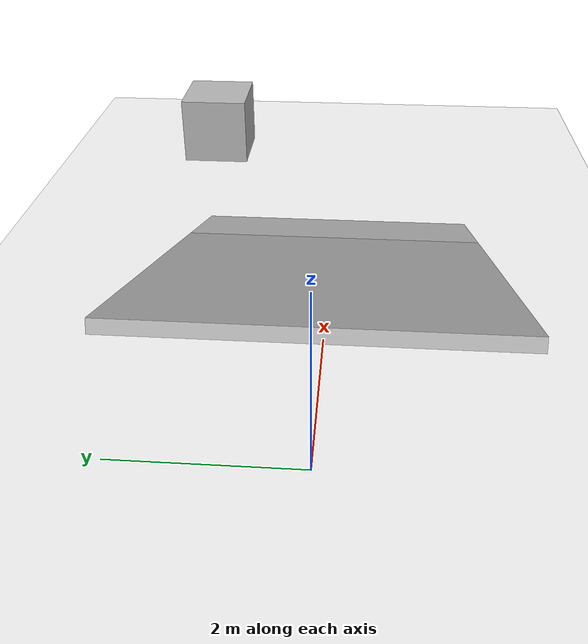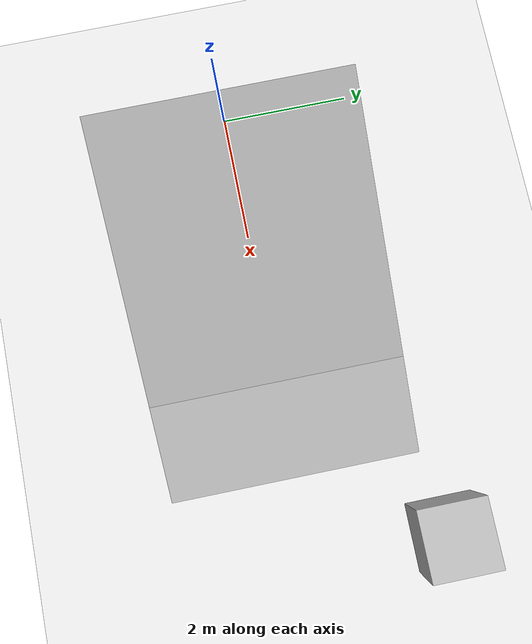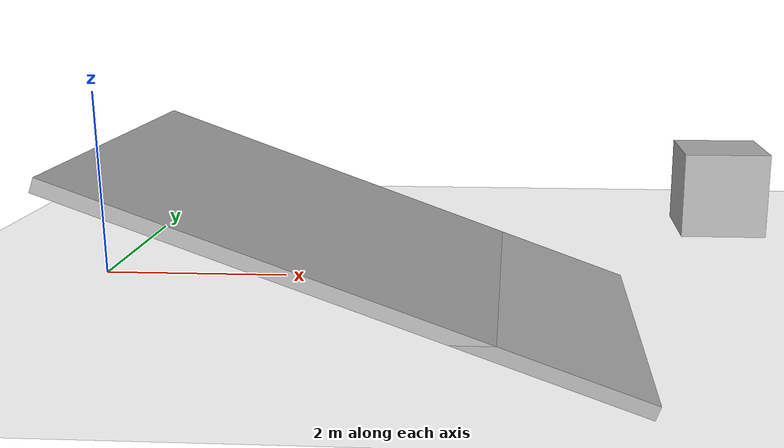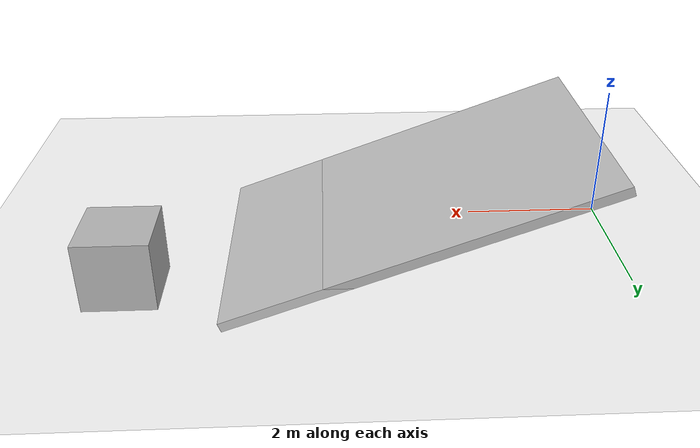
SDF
<?xml version="1.0" ?>
<sdf version="1.9">
  <world name="complex_terrain">
    <plugin filename="gz-sim-physics-system" name="gz::sim::systems::Physics"/>
    <plugin filename="gz-sim-user-commands-system" name="gz::sim::systems::UserCommands"/>
    <plugin filename="gz-sim-scene-broadcaster-system" name="gz::sim::systems::SceneBroadcaster"/>
    <plugin filename="gz-sim-sensors-system" name="gz::sim::systems::Sensors"/>
    <plugin filename="gz-sim-imu-system" name="gz::sim::systems::Imu"/>

    <!-- Sàn -->
    <model name="ground_plane">
      <static>true</static>
      <link name="link">
        <collision name="collision">
          <geometry><plane><normal>0 0 1</normal><size>100 100</size></plane></geometry>
        </collision>
        <visual name="visual">
          <geometry><plane><normal>0 0 1</normal><size>100 100</size></plane></geometry>
        </visual>
      </link>
    </model>

    <!-- Dốc (ramp) -->
    <model name="ramp">
      <pose>3 0 0.4 0 0.35 0</pose>
      <link name="link">
        <collision name="collision">
          <geometry><box><size>6 4 0.15</size></box></geometry>
        </collision>
        <visual name="visual">
          <geometry><box><size>6 4 0.15</size></box></geometry>
        </visual>
      </link>
    </model>

    <!-- Hộp chướng ngại -->
    <model name="obstacle">
      <pose>7 2 0.6 0 0 0</pose>
      <link name="link">
        <collision name="collision">
          <geometry><box><size>1 1 1</size></box></geometry>
        </collision>
        <visual name="visual">
          <geometry><box><size>1 1 1</size></box></geometry>
        </visual>
      </link>
    </model>
  </world>
</sdf>
